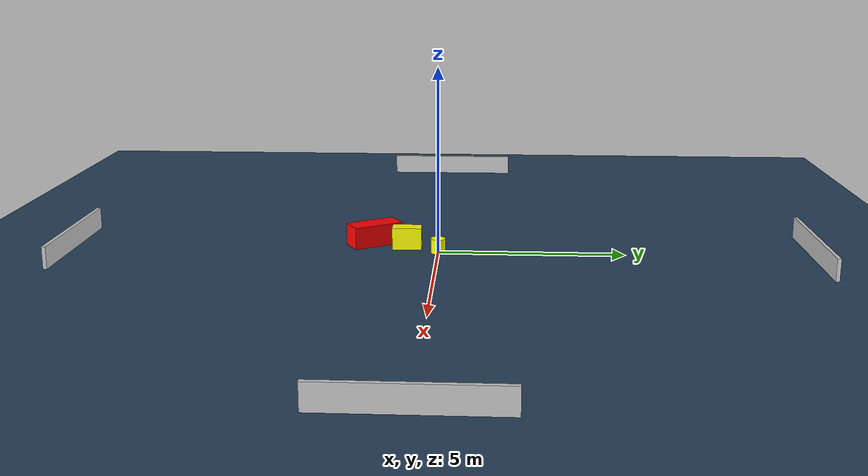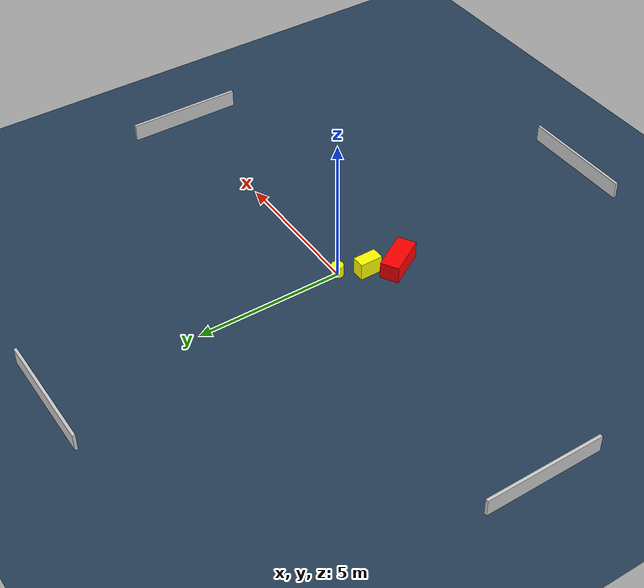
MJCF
<?xml version="1.0" ?>
<mujoco model="generated_environment">
  <option timestep="0.01" integrator="RK4" cone="elliptic"/>
  <default>
    <geom density="1"/>
  </default>
  <asset>
    <texture builtin="gradient" height="3072" name="skybox" rgb1="0.3 0.5 0.7" rgb2="0 0 0" type="skybox" width="512"/>
    <texture builtin="checker" height="300" name="groundplane" rgb1="0.2 0.3 0.4" rgb2="0.1 0.2 0.3" type="2d" width="300"/>
    <material name="groundplane" reflectance="0.2" texrepeat="5 5" texture="groundplane"/>
  </asset>
  <worldbody>
    <light dir="0 0 -1" directional="true" pos="0 0 1.5"/>
    <geom condim="3" friction="0.5 0.005 0.001" material="groundplane" name="floor" pos="0 0 0" size="0 0 0.05" type="plane"/>
    <body name="walls">
      <geom name="wall_1" condim="4" pos="-10.0 0.0 0.3" rgba="0.800000011920929 0.800000011920929 0.800000011920929 1.0" size="0.05 2.0 0.3" type="box"/>
      <geom name="wall_2" condim="4" pos="10.0 0.0 0.3" rgba="0.800000011920929 0.800000011920929 0.800000011920929 1.0" size="0.05 2.0 0.3" type="box"/>
      <geom name="wall_3" condim="4" pos="0.0 -10.0 0.3" rgba="0.800000011920929 0.800000011920929 0.800000011920929 1.0" size="2.0 0.05 0.3" type="box"/>
      <geom name="wall_4" condim="4" pos="0.0 10.0 0.3" rgba="0.800000011920929 0.800000011920929 0.800000011920929 1.0" size="2.0 0.05 0.3" type="box"/>
    </body>
    <body name="robot">
      <joint name="joint_x" type="slide" pos="0 0 0" axis="1 0 0"/>
      <joint name="joint_y" type="slide" pos="0 0 0" axis="0 1 0"/>
      <geom name="robot" type="cylinder" pos="0.0 0.0 0.2" size="0.2 0.2 0.0" mass="5.0" friction="1.0 0.005 0.0001" condim="4" rgba="1.0 1.0 0.0 1.0"/>
    </body>
    <body name="obstacle_1_movable">
      <geom name="obstacle_1_movable" condim="4" pos="-0.4270981112578808 -0.8694765548540808 0.3" euler="0 0 90.40345844392647" friction="0.0 0.005 0.001" rgba="1.0 1.0 0.0 1.0" size="0.39533039316261986 0.216997622851459 0.3" type="box" mass="0.1"/>
      <joint type="free"/>
    </body>
    <body name="obstacle_2_static">
      <geom name="obstacle_2_static" condim="4" pos="-0.7787153853576174 -1.8025035545104473 0.3" euler="0 0 300.9350607758282" friction="0.0 0.005 0.001" rgba="1.0 0.0 0.0 1.0" size="0.7018413672115396 0.3191632894739655 0.3" type="box"/>
    </body>
  </worldbody>
  <actuator>
    <motor name="actuator_x" joint="joint_x" gear="1" ctrlrange="-1 1"/>
    <motor name="actuator_y" joint="joint_y" gear="1" ctrlrange="-1 1"/>
  </actuator>
</mujoco>
